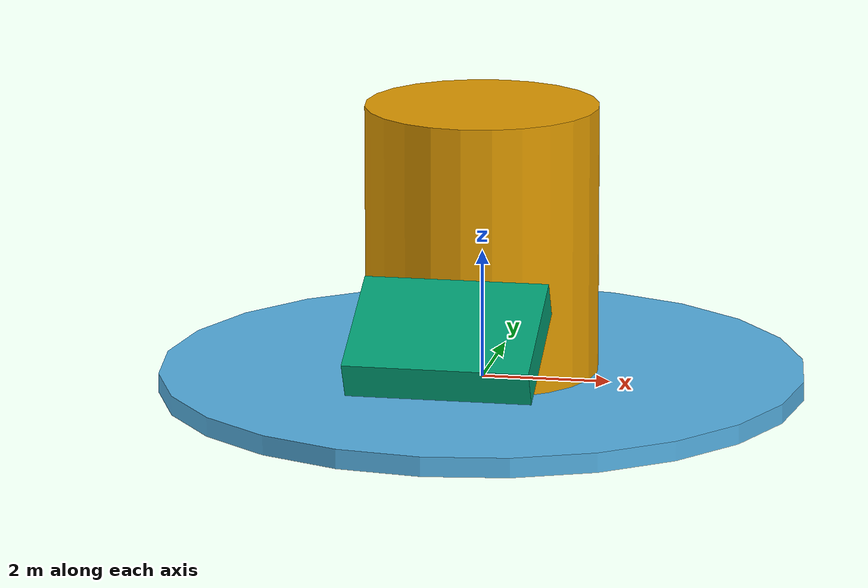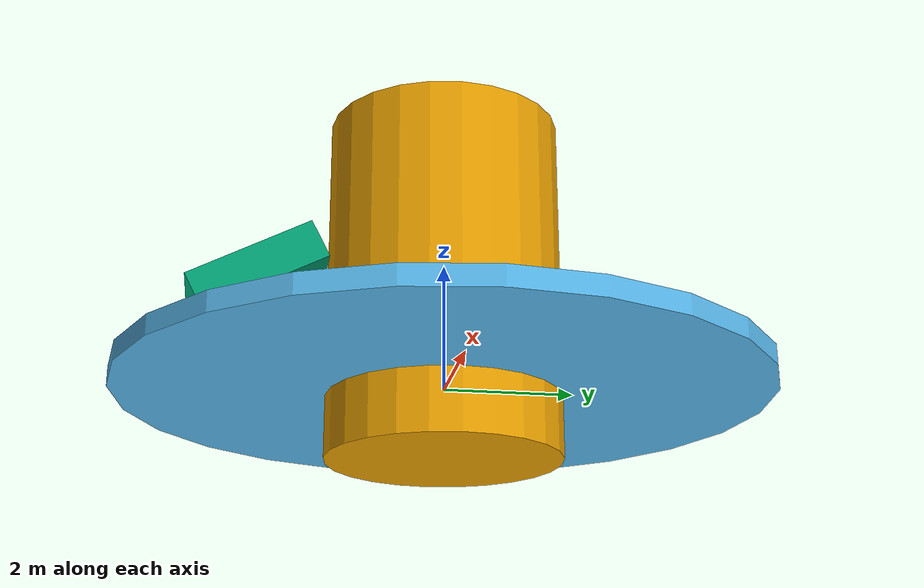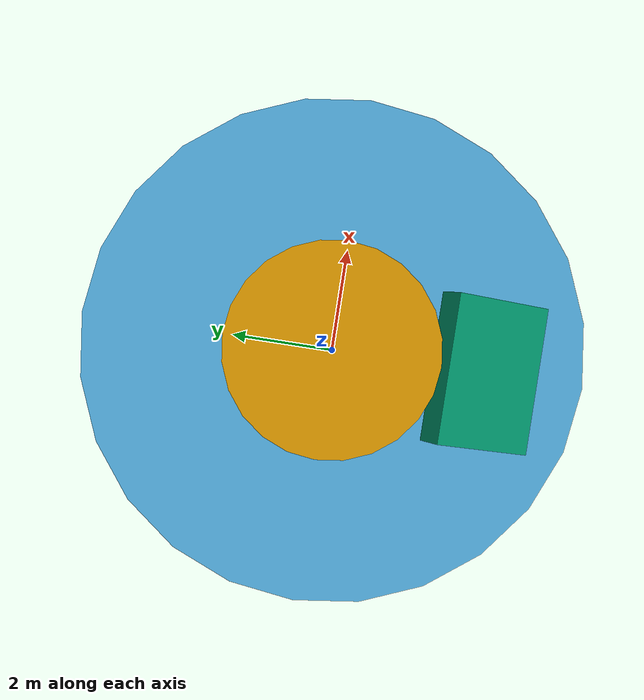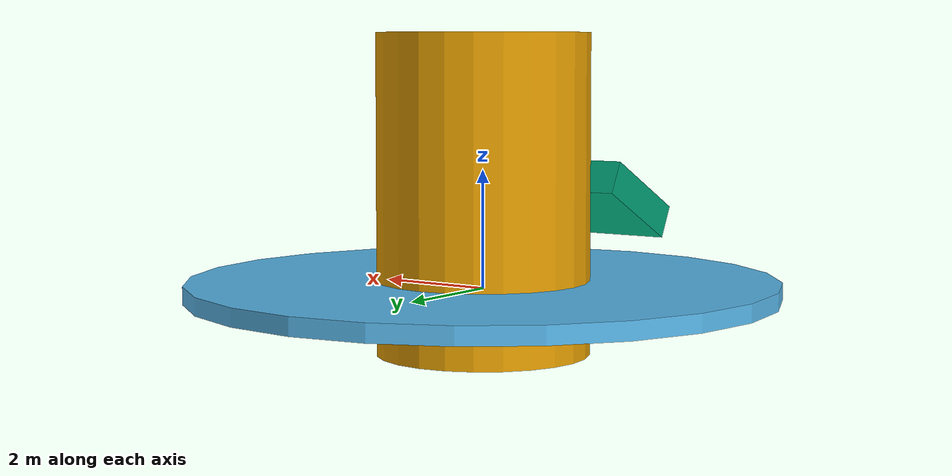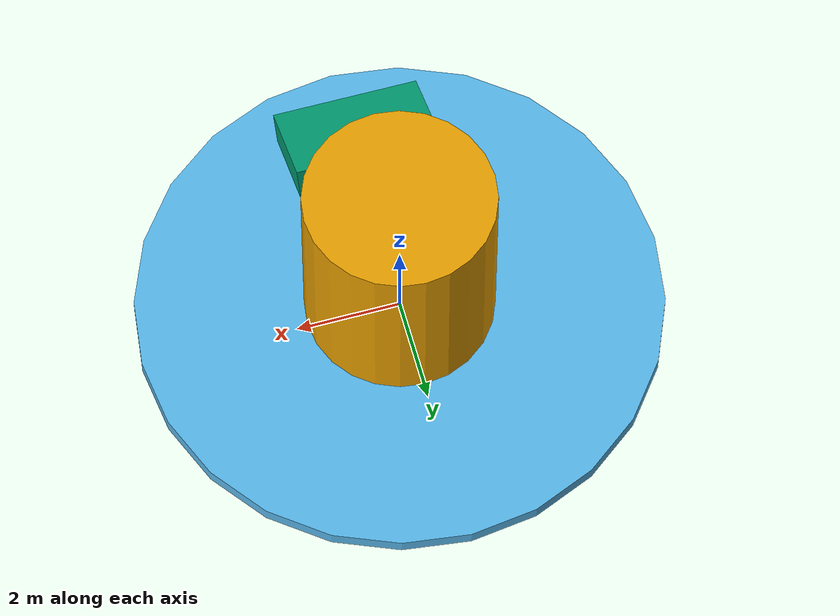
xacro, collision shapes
<?xml version="1.0" ?>
<!--
    Space Robotics Challenge (2): Final Round
    NASA-JSC
    Copyright (c) 2020, All Rights Reserved
    Unauthorized distribution strictly prohibited

    Definition of the Processing plant.
-->
<robot xmlns:xacro="http://www.ros.org/wiki/xacro" name="processing_plant">
        <!-- includes -->
    <xacro:include filename="../../rovers/common/inertia_macros.xacro"/>
    <xacro:arg name="name" 		default="processing_plant"/>
    <xacro:arg name="len" 		default="5.40"/>
    <xacro:arg name="rad" 		default="1.801"/>
    <xacro:arg name="zoffset"	default="0.60"/>
    <xacro:arg name="zoffset_collision"	default="1.60"/>

    <!-- Main Link  -->
    <link name="$(arg name)_link">
        <inertial>
            <origin xyz="0 0 2.00"
                    rpy="0 0 0"/>

            <mass 	value = "100.0"/>

            <xacro:cylinder_inertia
                    m = "20.0"
                    h = "3.0"
                    r = "0.2" />

        </inertial>

        <collision>
            <origin xyz="0 0 $(arg zoffset_collision)"
                    rpy="0 0 -${pi/2}"/>
            <geometry>
                <cylinder
                    length="$(arg len)"
                    radius="$(arg rad)"/>
            </geometry>
        </collision>

        <visual>
            <origin xyz="0 0 $(arg zoffset)"
                    rpy="0 0 -${pi/2}"/>
            <geometry>
                <mesh
                    filename = "package://srcp2_models_final/meshes/landers/processing/ProcessingPlant.dae"
                    scale    = "1 1 1"/>
            </geometry>
        </visual>
    </link>

    <!-- Spawn Zone  -->
    <link name="$(arg name)_spawn_zone_link">
        <collision>
            <geometry>
                <cylinder
                    length="0.3"
                    radius="5.0" />
            </geometry>
        </collision>
    </link>

    <!-- Spawn Joint Main to Spawn  -->
    <joint name="$(arg name)_spawning_zone_joint" type="fixed">
        <parent  link="$(arg name)_link"/>
        <child link="$(arg name)_spawn_zone_link"/>
        <origin xyz="0 0 0" rpy="0 0 0"/>
        <axis   xyz="0 0 1"/>
    </joint>

    <!-- Score Hopper Zone  -->
    <link name="$(arg name)_hopper_zone_link">
        <collision>
            <origin xyz="0.0 -2.9 0.75" rpy="0.475 0 0"/>
            <geometry>
                <box size="2.8 2.0 0.6"/>
            </geometry>
        </collision>
        <inertial>
            <origin xyz='0.0 0.0 0.0' rpy='0.0 0.0 0.0'/>
            <mass value='1.0'/>
            <inertia ixx='0.0' ixy='0.0' ixz='0.0'
                    iyy='0.0' iyz='0.0' izz='0.0'/>
        </inertial>
    </link>

    <!-- Score Hopper Joint  -->
    <joint name="$(arg name)_hopper_zone_joint" type="fixed">
        <parent  link="$(arg name)_link"/>
        <child link="$(arg name)_hopper_zone_link"/>
        <origin xyz="0 0 $(arg zoffset)" rpy="0 0 0"/>
        <axis   xyz="0 0 1"/>
    </joint>

    <gazebo reference="$(arg name)_hopper_zone_link">
        <collision>
            <surface>
                <contact>
                    <collide_bitmask>0x02</collide_bitmask>
                </contact>
            </surface>
        </collision>
    </gazebo>

    <gazebo reference='$(arg name)_hopper_zone_joint'>
        <preserveFixedJoint>true</preserveFixedJoint>
    </gazebo>

    <gazebo reference="$(arg name)_spawn_zone_link">
        <collision>
            <surface>
                <contact>
                    <collide_bitmask>0x02</collide_bitmask>
                </contact>
            </surface>
        </collision>
    </gazebo>

    <!-- Gazaboo -->
    <gazebo 	reference="$(arg name)_link"
                mu1="1.0"
                mu2="1.0"
                kp="100000.0"
                kd="1.0"/>

    <gazebo>
        <static>true</static>
        <selfCollide>false</selfCollide>
        <gravity>false</gravity>
    </gazebo>
 </robot>
